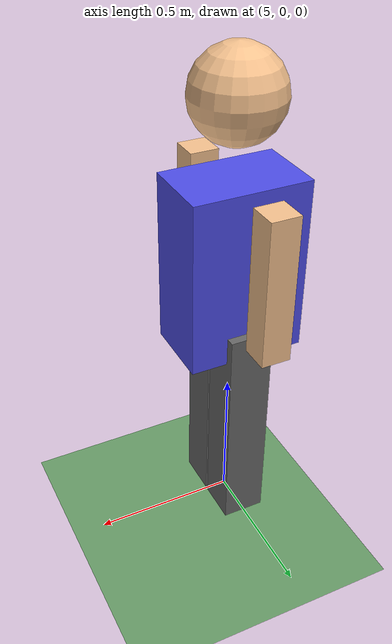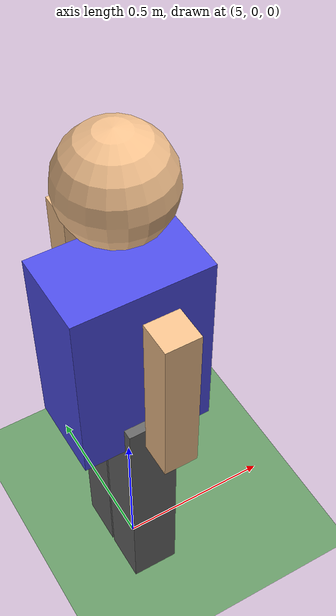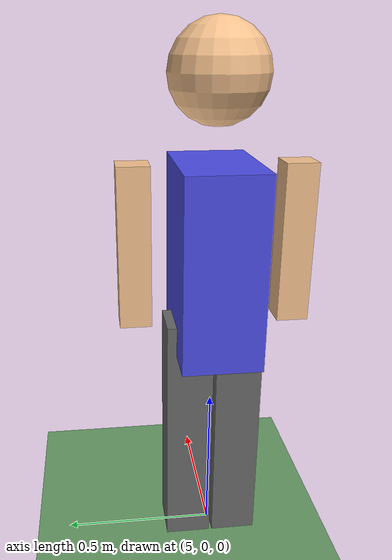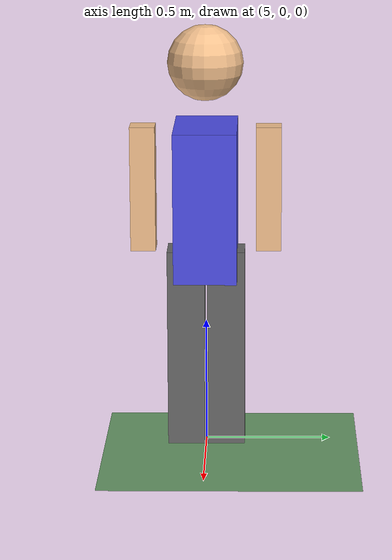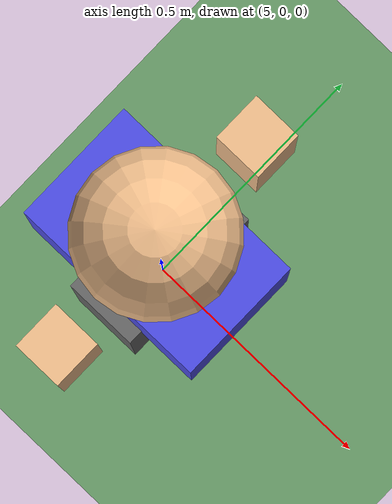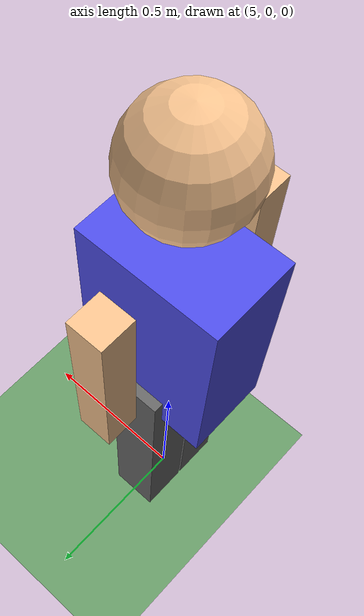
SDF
<?xml version="1.0" ?>
<sdf version="1.9">
  <world name="person_tracking">

    <!-- GPS origin required by PX4 to pass health checks and allow arming -->
    <spherical_coordinates>
      <surface_model>EARTH_WGS84</surface_model>
      <world_frame_orientation>ENU</world_frame_orientation>
      <latitude_deg>47.397742</latitude_deg>
      <longitude_deg>8.545594</longitude_deg>
      <elevation>488.0</elevation>
    </spherical_coordinates>

    <physics name="1ms" type="ode">
      <max_step_size>0.001</max_step_size>
      <real_time_factor>1.0</real_time_factor>
    </physics>

    <plugin filename="gz-sim-physics-system" name="gz::sim::systems::Physics"/>
    <plugin filename="gz-sim-user-commands-system" name="gz::sim::systems::UserCommands"/>
    <plugin filename="gz-sim-scene-broadcaster-system" name="gz::sim::systems::SceneBroadcaster"/>
    <plugin filename="gz-sim-sensors-system" name="gz::sim::systems::Sensors">
      <render_engine>ogre2</render_engine>
    </plugin>
    <plugin filename="gz-sim-imu-system" name="gz::sim::systems::Imu"/>
    <plugin filename="gz-sim-magnetometer-system" name="gz::sim::systems::Magnetometer"/>
    <plugin filename="gz-sim-air-pressure-system" name="gz::sim::systems::AirPressure"/>
    <plugin filename="gz-sim-air-speed-system" name="gz::sim::systems::AirSpeed"/>

    <!-- Sunlight -->
    <light type="directional" name="sun">
      <cast_shadows>true</cast_shadows>
      <pose>0 0 10 0 0 0</pose>
      <diffuse>0.8 0.8 0.8 1</diffuse>
      <specular>0.2 0.2 0.2 1</specular>
      <attenuation>
        <range>1000</range>
        <constant>0.9</constant>
        <linear>0.01</linear>
        <quadratic>0.001</quadratic>
      </attenuation>
      <direction>-0.5 0.1 -0.9</direction>
    </light>

    <!-- Flat ground plane -->
    <model name="ground_plane">
      <static>true</static>
      <link name="link">
        <collision name="collision">
          <geometry>
            <plane>
              <normal>0 0 1</normal>
              <size>500 500</size>
            </plane>
          </geometry>
        </collision>
        <visual name="visual">
          <geometry>
            <plane>
              <normal>0 0 1</normal>
              <size>500 500</size>
            </plane>
          </geometry>
          <material>
            <ambient>0.3 0.5 0.3 1</ambient>
            <diffuse>0.4 0.6 0.4 1</diffuse>
            <specular>0.1 0.1 0.1 1</specular>
          </material>
        </visual>
      </link>
    </model>

    <!-- Person (simple human-shaped model) -->
    <model name="person">
      <static>true</static>
      <pose>5 0 0 0 0 0</pose>

      <!-- Torso -->
      <link name="torso">
        <pose>0 0 1.0 0 0 0</pose>
        <visual name="torso_visual">
          <geometry>
            <box><size>0.4 0.25 0.6</size></box>
          </geometry>
          <material>
            <ambient>0.2 0.2 0.8 1</ambient>
            <diffuse>0.3 0.3 0.9 1</diffuse>
          </material>
        </visual>
        <collision name="torso_collision">
          <geometry>
            <box><size>0.4 0.25 0.6</size></box>
          </geometry>
        </collision>
      </link>

      <!-- Head -->
      <link name="head">
        <pose>0 0 1.55 0 0 0</pose>
        <visual name="head_visual">
          <geometry>
            <sphere><radius>0.15</radius></sphere>
          </geometry>
          <material>
            <ambient>0.9 0.7 0.5 1</ambient>
            <diffuse>0.95 0.75 0.55 1</diffuse>
          </material>
        </visual>
      </link>

      <!-- Left Leg -->
      <link name="left_leg">
        <pose>0.0 -0.08 0.4 0 0 0</pose>
        <visual name="left_leg_visual">
          <geometry>
            <box><size>0.15 0.15 0.8</size></box>
          </geometry>
          <material>
            <ambient>0.3 0.3 0.3 1</ambient>
            <diffuse>0.4 0.4 0.4 1</diffuse>
          </material>
        </visual>
      </link>

      <!-- Right Leg -->
      <link name="right_leg">
        <pose>0.0 0.08 0.4 0 0 0</pose>
        <visual name="right_leg_visual">
          <geometry>
            <box><size>0.15 0.15 0.8</size></box>
          </geometry>
          <material>
            <ambient>0.3 0.3 0.3 1</ambient>
            <diffuse>0.4 0.4 0.4 1</diffuse>
          </material>
        </visual>
      </link>

      <!-- Left Arm -->
      <link name="left_arm">
        <pose>0.0 -0.25 1.05 0 0 0</pose>
        <visual name="left_arm_visual">
          <geometry>
            <box><size>0.1 0.1 0.5</size></box>
          </geometry>
          <material>
            <ambient>0.9 0.7 0.5 1</ambient>
            <diffuse>0.95 0.75 0.55 1</diffuse>
          </material>
        </visual>
      </link>

      <!-- Right Arm -->
      <link name="right_arm">
        <pose>0.0 0.25 1.05 0 0 0</pose>
        <visual name="right_arm_visual">
          <geometry>
            <box><size>0.1 0.1 0.5</size></box>
          </geometry>
          <material>
            <ambient>0.9 0.7 0.5 1</ambient>
            <diffuse>0.95 0.75 0.55 1</diffuse>
          </material>
        </visual>
      </link>
    </model>

  </world>
</sdf>
